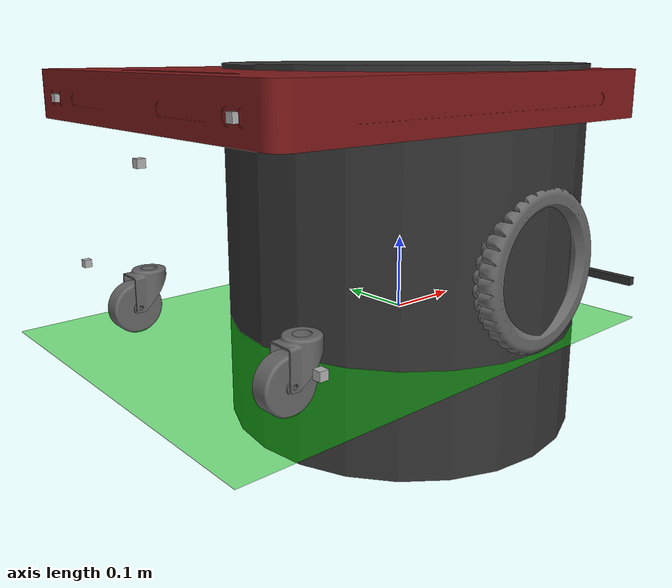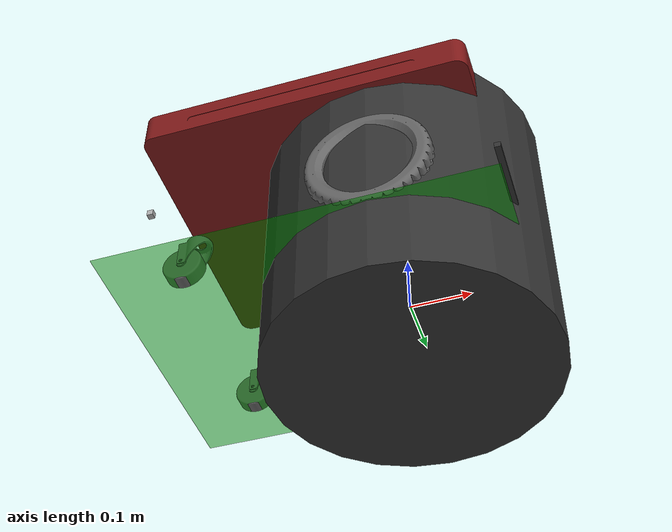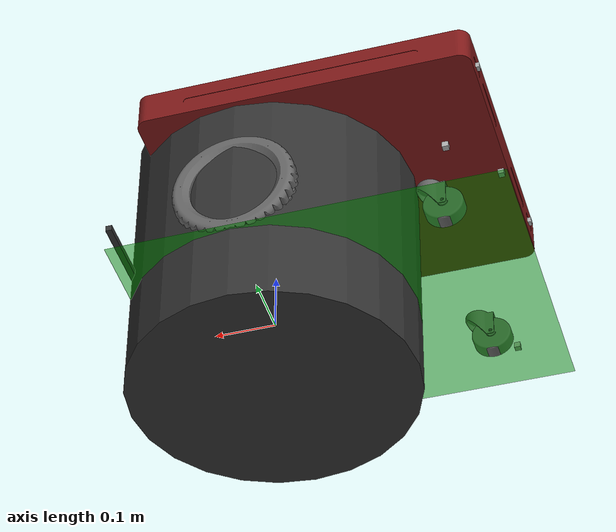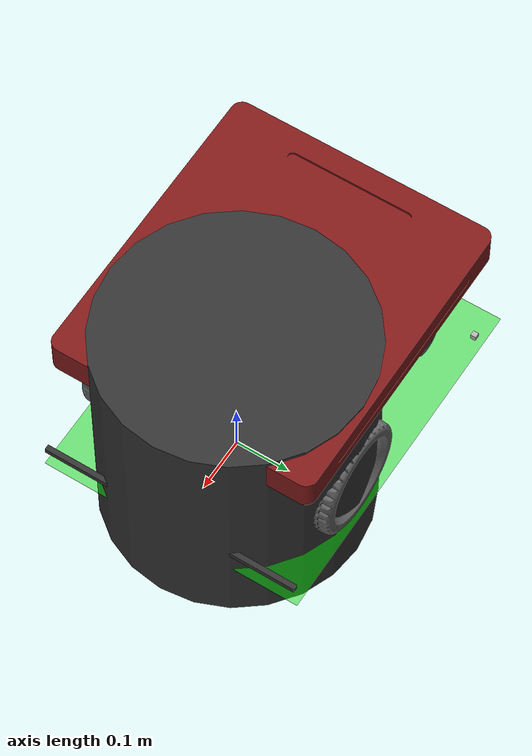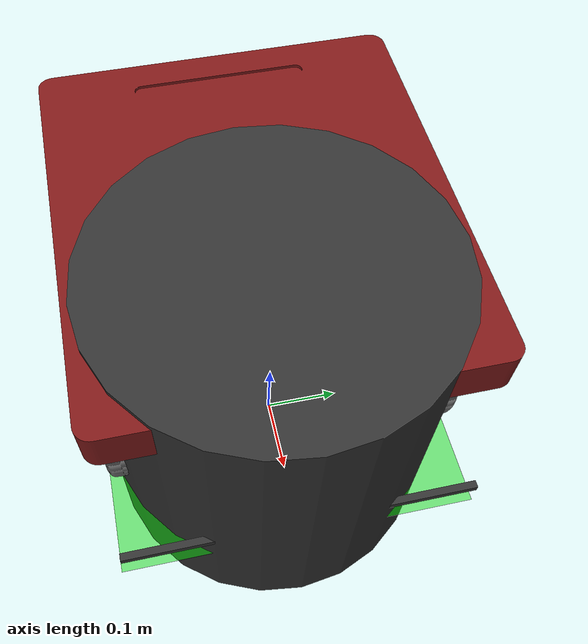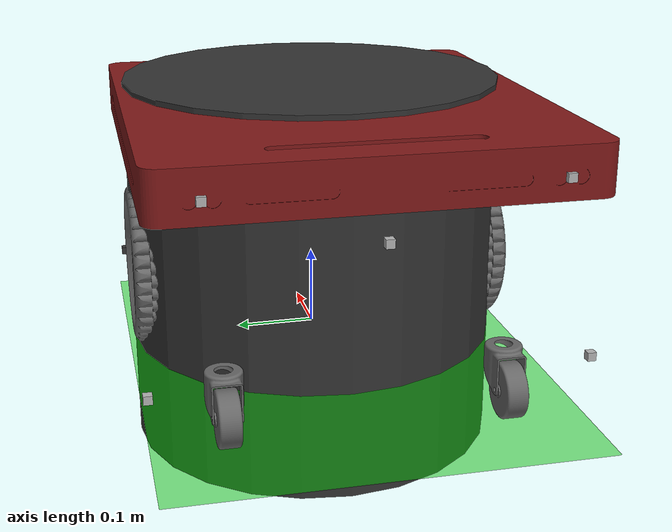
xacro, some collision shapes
<?xml version="1.0"?>

<robot name="tetraDS" xmlns:xacro="http://ros.org/wiki/xacro">

  <!-- Define a number of dimensions using properties -->
  <xacro:property name="base_length" value="0.473" />
  <xacro:property name="base_radius" value="0.2365" />
  <xacro:property name="wheel_length" value="0.047" />
  <xacro:property name="wheel_radius" value="0.085" />
  <xacro:property name="wheel_offset_x" value="0.0" />
  <xacro:property name="wheel_offset_y" value="0.207" />
  <xacro:property name="wheel_offset_z" value="-0.100" />
  <xacro:property name="PI" value="3.1415926" />

  <xacro:macro name="cylinder_inertia" params="m r h">
        <inertia ixx="${m*(3*r*r+h*h)/12}" ixy="0" ixz="0" iyy="${m*(3*r*r+h*h)/12}" iyz="0" izz="${m*r*r/2}" />
  </xacro:macro>

   <!-- Include all component files -->
   <xacro:include filename="$(find tetraDS_description)/urdf/tetraDS/materials.urdf.xacro" />
   <xacro:include filename="$(find tetraDS_description)/urdf/tetraDS/base.urdf.xacro" />

   <!-- Add the base and wheels -->
   <base name="base" color="Black"/>

  <link name="laser">
      <visual>
        <origin xyz="0 0 0" rpy="0 0 0" />
        <geometry>
          <box size="0.01 0.01 0.01" />
        </geometry>
        <material name="Grey" />
      </visual>
  </link>

  <joint name="laser_flag" type="fixed">
    <origin xyz="0.1372 0 0.142" rpy="0 0 0" />
    <parent link="base_link"/>
    <child link="laser" />
  </joint>

  <link name="imu_link">
      <visual>
        <origin xyz="0 0 0" rpy="0 0 0" />
        <geometry>
          <box size="0.01 0.01 0.01" />
        </geometry>
        <material name="Grey" />
      </visual>
  </link>

  <joint name="base_link_to_imu_link" type="fixed">
    <origin xyz="0.0 0 0.2" rpy="0 0 0" />
    <parent link="base_link"/>
    <child link="imu_link" />
  </joint>

 <link name="usb_cam">
      <visual>
        <origin xyz="0 0 0" rpy="0 0 0" />
        <geometry>
          <box size="0.01 0.01 0.01" />
        </geometry>
        <material name="Grey" />
      </visual>
  </link>

  <joint name="usb_cam" type="fixed">
    <origin xyz="-0.384 0.0 0.1387" rpy="1.5708 3.14159 4.71239"/>
    <parent link="base_link"/>
    <child link="usb_cam" />
  </joint>

 <link name="Front_bumper">
      <visual>
        <origin xyz="0 0 0" rpy="0 0 0" />
        <geometry>
          <box size="0.01 0.48 0.01" />
        </geometry>
        <material name="TransparentBlack" />
      </visual>
  </link>

  <joint name="Front_bumper" type="fixed">
    <origin xyz="0.2 0.0 -0.05" rpy="0 0 0" />
    <parent link="base_link"/>
    <child link="Front_bumper" />
  </joint>

 <link name="sonar_DL">
      <visual>
        <origin xyz="0 0 0" rpy="0 0 0" />
        <geometry>
          <box size="0.01 0.01 0.01" />
        </geometry>
        <material name="Grey" />
      </visual>
  </link>

  <joint name="sonar_DL" type="fixed">
    <origin xyz="-0.34654 0.245 -0.02517" rpy="0 0 1.5708" />
    <parent link="base_link"/>
    <child link="sonar_DL" />
  </joint>

 <link name="sonar_RL">
      <visual>
        <origin xyz="0 0 0" rpy="0 0 0" />
        <geometry>
          <box size="0.01 0.01 0.01" />
        </geometry>
        <material name="Grey" />
      </visual>
  </link>

  <joint name="sonar_RL" type="fixed">
    <origin xyz="-0.3902 0.18754 0.197" rpy="0 0 3.14" />
    <parent link="base_link"/>
    <child link="sonar_RL" />
  </joint>

 <link name="sonar_RR">
      <visual>
        <origin xyz="0 0 0" rpy="0 0 0" />
        <geometry>
          <box size="0.01 0.01 0.01" />
        </geometry>
        <material name="Grey" />
      </visual>
  </link>

  <joint name="sonar_RR" type="fixed">
    <origin xyz="-0.3902 -0.18754 0.197" rpy="0 0 3.14" />
    <parent link="base_link"/>
    <child link="sonar_RR" />
  </joint>

 <link name="sonar_DR">
      <visual>
        <origin xyz="0 0 0" rpy="0 0 0" />
        <geometry>
          <box size="0.01 0.01 0.01" />
        </geometry>
        <material name="Grey" />
      </visual>
  </link>

  <joint name="sonar_DR" type="fixed">
    <origin xyz="-0.34654 -0.245 -0.02517" rpy="0 0 -1.5708" />
    <parent link="base_link"/>
    <child link="sonar_DR" />
  </joint>

 <link name="camera1_link">
      <visual>
        <origin xyz="0 0 0" rpy="0 0 0" />
        <geometry>
          <box size="0.01 0.01 0.01" />
        </geometry>
        <material name="Grey" />
      </visual>
  </link>

  <joint name="camera1_link" type="fixed">
    <origin xyz="0.1553 0.079 0.0" rpy="0 0 0" />
    <parent link="base_link"/>
    <child link="camera1_link" />
  </joint>

 <link name="camera2_link">
      <visual>
        <origin xyz="0 0 0" rpy="0 0 0" />
        <geometry>
          <box size="0.01 0.01 0.01" />
        </geometry>
        <material name="Grey" />
      </visual>
  </link>

  <joint name="camera2_link" type="fixed">
    <origin xyz="0.1553 -0.1145 0.0" rpy="0 0 0" />
    <parent link="base_link"/>
    <child link="camera2_link" />
  </joint>

 <link name="base_Upperlink">
   <visual>
    <origin xyz=" 0 0 0 " rpy="0 0 0" />
      <geometry>
        <mesh
          filename="package://tetraDS_description/meshes/Platform Body_U.STL" scale="0.001 0.001 0.001" />
      </geometry>
      <material name="TransparentRed"/>
    </visual>
      <collision>
            <origin xyz="0 0 0" rpy="0 0 0"/>
            <geometry>
                <cylinder length="${base_length}" radius="${base_radius}"/>
            </geometry>
      </collision>
  </link>

  <joint name="base_Upperlink" type="fixed">
    <origin xyz="0.0 0.0 0.0" rpy="0 0 0" />
    <parent link="base_link"/>
    <child link="base_Upperlink" />
  </joint>

</robot>

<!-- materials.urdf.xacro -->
<robot>

  <!-- Put all the color definitions in a separate file -->

  <material name="Black">
    <color rgba="0.2 0.2 0.2 1.0"/>
  </material>

   <material name="TransparentBlack">
    <color rgba="0.2 0.2 0.2 1.0"/>
  </material>

  <material name="Orange">
    <color rgba="1.0  0.55 0.0 1.0"/>
  </material>

  <material name="Grey">
    <color rgba="0.7 0.7 0.7 1.0"/>
  </material>

  <material name="DarkGrey">
    <color rgba="0.4 0.4 0.4 1.0"/>
  </material>

  <material name="Red">
    <color rgba="0.8 0.0 0.0 1.0"/>
  </material>

  <material name="TransparentRed">
    <color rgba="0.5 0.1 0.1 1.0"/>
  </material>

  <material name="White">
    <color rgba="1.0 1.0 1.0 0.98"/>
  </material>

  <material name="OffWhite">
    <color rgba="0.8 0.8 0.8 1.0"/>
  </material>

  <material name="Blue">
    <color rgba="0.0 0.0 0.8 1.0"/>
  </material>

  <material name="Green">
    <color rgba="0.0 0.8 0.0 1.0"/>
  </material>

  <material name="TransparentGreen">
    <color rgba="0.0 0.8 0.0 0.5"/>
  </material>

 <material name="TransparentBlue">
    <color rgba="0.0 0.0 0.6 0.8"/>
  </material>

 <material name="TransparentYellow">
    <color rgba="0.8 0.8 0.1 1.0"/>
  </material>

</robot>

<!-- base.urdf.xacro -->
<robot name="tetraDS" xmlns:xacro="http://ros.org/wiki/xacro">

  <!-- Define a number of dimensions using properties -->
  <xacro:property name="base_length" value="0.473" />
  <xacro:property name="base_radius" value="0.2365" />
  <xacro:property name="wheel_length" value="0.047" />
  <xacro:property name="wheel_radius" value="0.085" />
  <xacro:property name="wheel_offset_x" value="0.0" />
  <xacro:property name="wheel_offset_y" value="0.207" />
  <xacro:property name="wheel_offset_z" value="-0.100" />
  <xacro:property name="PI" value="3.1415926" />

  <xacro:macro name="cylinder_inertia" params="m r h">
        <inertia ixx="${m*(3*r*r+h*h)/12}" ixy="0" ixz="0" iyy="${m*(3*r*r+h*h)/12}" iyz="0" izz="${m*r*r/2}" />
  </xacro:macro>

  <!-- define a wheel -->
  <joint name="base_l_wheel_joint" type="fixed">
    <axis xyz="0 1 0" />
    <origin xyz="${wheel_offset_x} ${wheel_offset_y} 0" rpy="0 0 0" />
    <parent link="base_link"/>
    <child link="base_l_wheel_link"/>
   </joint>
    <link name="base_l_wheel_link">
  <visual>
    <origin xyz=" 0 ${-1.0*wheel_offset_y} 0 " rpy="0 0 0" />
	<geometry>
	  <mesh filename="package://tetraDS_description/meshes/Wheel Drive Left.STL" scale="0.001 0.001 0.001" />
	</geometry>
	<material name="DarkGrey"/>
  </visual>
    </link>

 <joint name="base_r_wheel_joint" type="fixed">
    <axis xyz="0 1 0" />
    <origin xyz="${wheel_offset_x} ${-1.0*wheel_offset_y} 0" rpy="0 0 0" />
    <parent link="base_link"/>
    <child link="base_r_wheel_link"/>
   </joint>
    <link name="base_r_wheel_link">
  <visual>
    <origin xyz=" 0 ${wheel_offset_y} 0 " rpy="0 0 0" />
	<geometry>
	  <mesh filename="package://tetraDS_description/meshes/Wheel Drive Right.STL" scale="0.001 0.001 0.001" />
	</geometry>
	<material name="DarkGrey"/>
  </visual>
    </link>

  <!-- The base xacro macro -->
  <xacro:macro name="base" params="name color">
   <link name="${name}_link">
    <visual>
    <origin xyz=" 0 0 0 " rpy="0 0 0" />
      <geometry>
        <mesh
          filename="package://tetraDS_description/meshes/Platform Body_L.STL" scale="0.001 0.001 0.001" />
      </geometry>
      <material name="Black"/>
    </visual>
      <collision>
            <origin xyz="0 0 0" rpy="0 0 0"/>
            <geometry>
                <cylinder length="${base_length}" radius="${base_radius}"/>
            </geometry>
      </collision>
    </link>
  </xacro:macro>

  <link name="base_footprint">
      <visual>
        <origin xyz="-0.1185 0 0" rpy="0 0 0" />
        <geometry>
	  <box size="0.641 0.490 0.001" />
        </geometry>
        <material name="TransparentGreen" />
      </visual>
  </link>

  <joint name="base_joint" type="fixed"> <!--fixed-->
    <origin xyz="0 0 ${-wheel_offset_z}" rpy="0 0 0" />
    <parent link="base_footprint"/>
    <child link="base_link" />
  </joint>

  <!-- Rear Caster-->
  <xacro:macro name="rear_caster_wheel" params="prefix dir">
        <link name="${prefix}_rear_caster_rotate">
            <visual>
                <origin xyz="0 0 0" rpy="0 0 0"/>
                <geometry>
                    <mesh filename="package://tetraDS_description/meshes/Caster Yoke.STL" scale="0.001 0.001 0.001" />
                </geometry>
                <material name="DarkGrey" />
            </visual>
            <collision>
                <origin xyz="0 0 0" rpy="0 0 0"/>
                <geometry>
                    <mesh filename="package://tetraDS_description/meshes/Caster Yoke.STL" scale="0.001 0.001 0.001" />
                </geometry>
            </collision>
            <inertial>
                <mass value="0.1"/>
                <origin xyz="0 0 0" rpy="0 0 0"/>
                <xacro:cylinder_inertia m="0.1" r="0.03" h="0.03"/>
            </inertial>
        </link>

        <joint name="${prefix}_rear_caster_rotate_joint" type="fixed">
            <parent link="base_link"/>
            <child link="${prefix}_rear_caster_rotate"/>
            <origin xyz="-0.300 ${dir*-0.160} -0.0225" rpy="0 0 0"/>
            <axis xyz="0 0 1"/>
        </joint>

        <link name="${prefix}_rear_caster_wheel">
            <visual>
                <origin xyz="0 0 0" rpy="0 0 0"/>
                <geometry>
                    <mesh filename="package://tetraDS_description/meshes/Caster Wheel.STL" scale="0.001 0.001 0.001" />
                </geometry>
                <material name="DarkGrey" />
            </visual>
            <collision>
                <origin xyz="0 0 0" rpy="0 0 0"/>
                <geometry>
                    <mesh filename="package://tetraDS_description/meshes/Caster Wheel.STL" scale="0.001 0.001 0.001" />
                </geometry>
            </collision>
            <inertial>
                <mass value="0.1"/>
                <origin xyz="0 0 0" rpy="${PI/2} 0 0"/>
                <xacro:cylinder_inertia m="0.1" r="0.06" h="0.04"/>
            </inertial>
        </link>

        <joint name="${prefix}_rear_caster_wheel_joint" type="fixed">
            <parent link="${prefix}_rear_caster_rotate"/>
            <child link="${prefix}_rear_caster_wheel"/>
            <origin xyz="-0.022 0 -0.047" rpy="0 0 0"/>
            <axis xyz="0 1 0"/>
        </joint>
    </xacro:macro>

  <xacro:rear_caster_wheel prefix="l" dir="1"/>
  <xacro:rear_caster_wheel prefix="r" dir="-1"/>

</robot>
